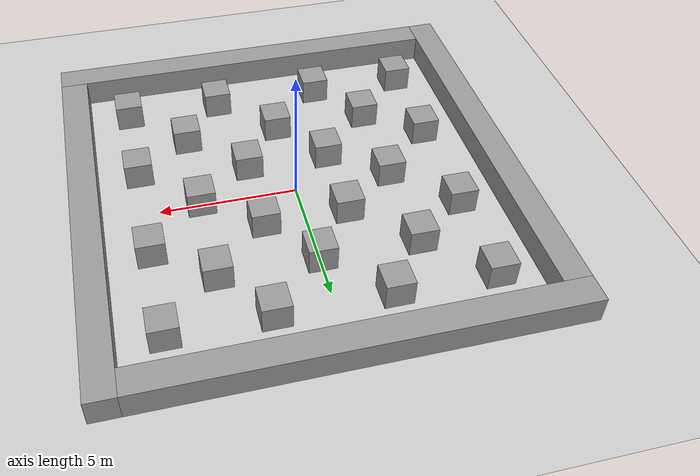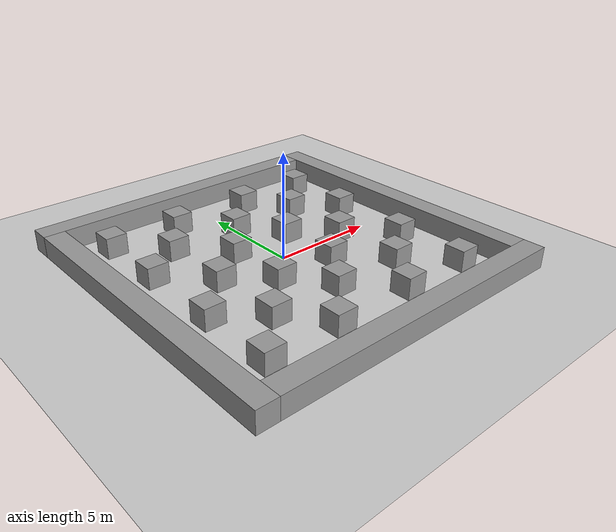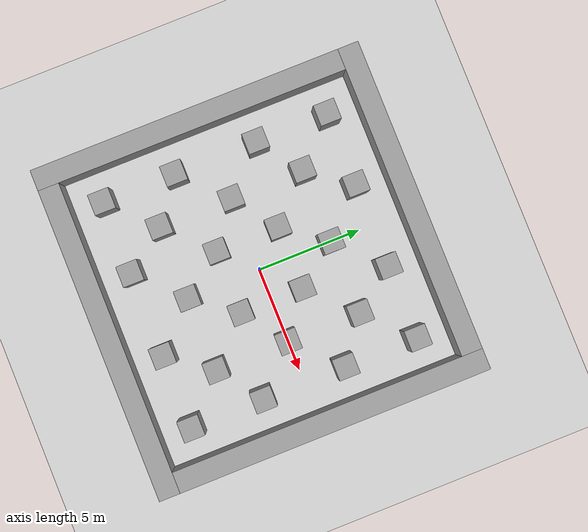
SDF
<sdf version='1.7'>
  <world name='default'>
    <include>
        <uri>model://sun</uri>
    </include>
    <include>
        <uri>model://ground_plane</uri>
    </include>

    <spherical_coordinates>
      <surface_model>EARTH_WGS84</surface_model>
      <latitude_deg>0</latitude_deg>
      <longitude_deg>0</longitude_deg>
      <elevation>0</elevation>
      <heading_deg>0</heading_deg>
    </spherical_coordinates>
    <model name='unit_box_0'>
    <static>true</static>
      <pose>1.5 -1.5 0.5 0 -0 0</pose>
      <link name='link'>
        <inertial>
          <mass>1</mass>
          <inertia>
            <ixx>0.5</ixx>
            <ixy>0</ixy>
            <ixz>0</ixz>
            <iyy>0.5</iyy>
            <iyz>0</iyz>
            <izz>0.5</izz>
          </inertia>
          <pose>0 0 0 0 -0 0</pose>
        </inertial>
        <collision name='collision'>
          <geometry>
            <box>
              <size>1 1 1</size>
            </box>
          </geometry>
          <max_contacts>10</max_contacts>
          <surface>
            <contact>
              <ode/>
            </contact>
            <bounce/>
            <friction>
              <torsional>
                <ode/>
              </torsional>
              <ode/>
            </friction>
          </surface>
        </collision>
        <visual name='visual'>
          <geometry>
            <box>
              <size>1 1 1</size>
            </box>
          </geometry>
          <material>
            <script>
              <name>Gazebo/Grey</name>
              <uri>file://media/materials/scripts/gazebo.material</uri>
            </script>
          </material>
        </visual>
        <self_collide>0</self_collide>
        <enable_wind>0</enable_wind>
        <kinematic>0</kinematic>
      </link>
    </model>
    <model name='unit_box_1'>
      <static>true</static>
      <pose>1.5 1.5 0.5 0 -0 0</pose>
      <link name='link'>
        <inertial>
          <mass>1</mass>
          <inertia>
            <ixx>0.5</ixx>
            <ixy>0</ixy>
            <ixz>0</ixz>
            <iyy>0.5</iyy>
            <iyz>0</iyz>
            <izz>0.5</izz>
          </inertia>
          <pose>0 0 0 0 -0 0</pose>
        </inertial>
        <collision name='collision'>
          <geometry>
            <box>
              <size>1 1 1</size>
            </box>
          </geometry>
          <max_contacts>10</max_contacts>
          <surface>
            <contact>
              <ode/>
            </contact>
            <bounce/>
            <friction>
              <torsional>
                <ode/>
              </torsional>
              <ode/>
            </friction>
          </surface>
        </collision>
        <visual name='visual'>
          <geometry>
            <box>
              <size>1 1 1</size>
            </box>
          </geometry>
          <material>
            <script>
              <name>Gazebo/Grey</name>
              <uri>file://media/materials/scripts/gazebo.material</uri>
            </script>
          </material>
        </visual>
        <self_collide>0</self_collide>
        <enable_wind>0</enable_wind>
        <kinematic>0</kinematic>
      </link>
    </model>
    <model name='unit_box_2'>
      <static>true</static>
      <pose>-1.5 1.5 0.5 0 -0 0</pose>
      <link name='link'>
        <inertial>
          <mass>1</mass>
          <inertia>
            <ixx>0.5</ixx>
            <ixy>0</ixy>
            <ixz>0</ixz>
            <iyy>0.5</iyy>
            <iyz>0</iyz>
            <izz>0.5</izz>
          </inertia>
          <pose>0 0 0 0 -0 0</pose>
        </inertial>
        <collision name='collision'>
          <geometry>
            <box>
              <size>1 1 1</size>
            </box>
          </geometry>
          <max_contacts>10</max_contacts>
          <surface>
            <contact>
              <ode/>
            </contact>
            <bounce/>
            <friction>
              <torsional>
                <ode/>
              </torsional>
              <ode/>
            </friction>
          </surface>
        </collision>
        <visual name='visual'>
          <geometry>
            <box>
              <size>1 1 1</size>
            </box>
          </geometry>
          <material>
            <script>
              <name>Gazebo/Grey</name>
              <uri>file://media/materials/scripts/gazebo.material</uri>
            </script>
          </material>
        </visual>
        <self_collide>0</self_collide>
        <enable_wind>0</enable_wind>
        <kinematic>0</kinematic>
      </link>
    </model>
    <model name='unit_box_3'>
      <static>true</static>
      <pose>-1.5 -1.5 0.5 0 -0 0</pose>
      <link name='link'>
        <inertial>
          <mass>1</mass>
          <inertia>
            <ixx>0.5</ixx>
            <ixy>0</ixy>
            <ixz>0</ixz>
            <iyy>0.5</iyy>
            <iyz>0</iyz>
            <izz>0.5</izz>
          </inertia>
          <pose>0 0 0 0 -0 0</pose>
        </inertial>
        <collision name='collision'>
          <geometry>
            <box>
              <size>1 1 1</size>
            </box>
          </geometry>
          <max_contacts>10</max_contacts>
          <surface>
            <contact>
              <ode/>
            </contact>
            <bounce/>
            <friction>
              <torsional>
                <ode/>
              </torsional>
              <ode/>
            </friction>
          </surface>
        </collision>
        <visual name='visual'>
          <geometry>
            <box>
              <size>1 1 1</size>
            </box>
          </geometry>
          <material>
            <script>
              <name>Gazebo/Grey</name>
              <uri>file://media/materials/scripts/gazebo.material</uri>
            </script>
          </material>
        </visual>
        <self_collide>0</self_collide>
        <enable_wind>0</enable_wind>
        <kinematic>0</kinematic>
      </link>
    </model>
    <model name='unit_box_5'>
      <static>true</static>
      <pose>-3.5 3.5 0.5 -0 -0 -0</pose>
      <link name='link'>
        <inertial>
          <mass>1</mass>
          <inertia>
            <ixx>0.5</ixx>
            <ixy>0</ixy>
            <ixz>0</ixz>
            <iyy>0.5</iyy>
            <iyz>0</iyz>
            <izz>0.5</izz>
          </inertia>
          <pose>0 0 0 0 -0 0</pose>
        </inertial>
        <collision name='collision'>
          <geometry>
            <box>
              <size>1 1 1</size>
            </box>
          </geometry>
          <max_contacts>10</max_contacts>
          <surface>
            <contact>
              <ode/>
            </contact>
            <bounce/>
            <friction>
              <torsional>
                <ode/>
              </torsional>
              <ode/>
            </friction>
          </surface>
        </collision>
        <visual name='visual'>
          <geometry>
            <box>
              <size>1 1 1</size>
            </box>
          </geometry>
          <material>
            <script>
              <name>Gazebo/Grey</name>
              <uri>file://media/materials/scripts/gazebo.material</uri>
            </script>
          </material>
        </visual>
        <self_collide>0</self_collide>
        <enable_wind>0</enable_wind>
        <kinematic>0</kinematic>
      </link>
    </model>
    <model name='unit_box_6'>
      <static>true</static>
      <pose>3.5 3.5 0.5 0 -0 0</pose>
      <link name='link'>
        <inertial>
          <mass>1</mass>
          <inertia>
            <ixx>0.5</ixx>
            <ixy>0</ixy>
            <ixz>0</ixz>
            <iyy>0.5</iyy>
            <iyz>0</iyz>
            <izz>0.5</izz>
          </inertia>
          <pose>0 0 0 0 -0 0</pose>
        </inertial>
        <collision name='collision'>
          <geometry>
            <box>
              <size>1 1 1</size>
            </box>
          </geometry>
          <max_contacts>10</max_contacts>
          <surface>
            <contact>
              <ode/>
            </contact>
            <bounce/>
            <friction>
              <torsional>
                <ode/>
              </torsional>
              <ode/>
            </friction>
          </surface>
        </collision>
        <visual name='visual'>
          <geometry>
            <box>
              <size>1 1 1</size>
            </box>
          </geometry>
          <material>
            <script>
              <name>Gazebo/Grey</name>
              <uri>file://media/materials/scripts/gazebo.material</uri>
            </script>
          </material>
        </visual>
        <self_collide>0</self_collide>
        <enable_wind>0</enable_wind>
        <kinematic>0</kinematic>
      </link>
    </model>
    <model name='unit_box_7'>
      <static>true</static>
      <pose>3.5 -3.5 0.5 0 -0 0</pose>
      <link name='link'>
        <inertial>
          <mass>1</mass>
          <inertia>
            <ixx>0.5</ixx>
            <ixy>0</ixy>
            <ixz>0</ixz>
            <iyy>0.5</iyy>
            <iyz>0</iyz>
            <izz>0.5</izz>
          </inertia>
          <pose>0 0 0 0 -0 0</pose>
        </inertial>
        <collision name='collision'>
          <geometry>
            <box>
              <size>1 1 1</size>
            </box>
          </geometry>
          <max_contacts>10</max_contacts>
          <surface>
            <contact>
              <ode/>
            </contact>
            <bounce/>
            <friction>
              <torsional>
                <ode/>
              </torsional>
              <ode/>
            </friction>
          </surface>
        </collision>
        <visual name='visual'>
          <geometry>
            <box>
              <size>1 1 1</size>
            </box>
          </geometry>
          <material>
            <script>
              <name>Gazebo/Grey</name>
              <uri>file://media/materials/scripts/gazebo.material</uri>
            </script>
          </material>
        </visual>
        <self_collide>0</self_collide>
        <enable_wind>0</enable_wind>
        <kinematic>0</kinematic>
      </link>
    </model>
    <model name='unit_box_8'>
      <static>true</static>
      <pose>0 -3.5 0.5 0 -0 0</pose>
      <link name='link'>
        <inertial>
          <mass>1</mass>
          <inertia>
            <ixx>0.5</ixx>
            <ixy>0</ixy>
            <ixz>0</ixz>
            <iyy>0.5</iyy>
            <iyz>0</iyz>
            <izz>0.5</izz>
          </inertia>
          <pose>0 0 0 0 -0 0</pose>
        </inertial>
        <collision name='collision'>
          <geometry>
            <box>
              <size>1 1 1</size>
            </box>
          </geometry>
          <max_contacts>10</max_contacts>
          <surface>
            <contact>
              <ode/>
            </contact>
            <bounce/>
            <friction>
              <torsional>
                <ode/>
              </torsional>
              <ode/>
            </friction>
          </surface>
        </collision>
        <visual name='visual'>
          <geometry>
            <box>
              <size>1 1 1</size>
            </box>
          </geometry>
          <material>
            <script>
              <name>Gazebo/Grey</name>
              <uri>file://media/materials/scripts/gazebo.material</uri>
            </script>
          </material>
        </visual>
        <self_collide>0</self_collide>
        <enable_wind>0</enable_wind>
        <kinematic>0</kinematic>
      </link>
    </model>
    <model name='unit_box_9'>
      <static>true</static>
      <pose>3.5 0 0.5 0 -0 0</pose>
      <link name='link'>
        <inertial>
          <mass>1</mass>
          <inertia>
            <ixx>0.5</ixx>
            <ixy>0</ixy>
            <ixz>0</ixz>
            <iyy>0.5</iyy>
            <iyz>0</iyz>
            <izz>0.5</izz>
          </inertia>
          <pose>0 0 0 0 -0 0</pose>
        </inertial>
        <collision name='collision'>
          <geometry>
            <box>
              <size>1 1 1</size>
            </box>
          </geometry>
          <max_contacts>10</max_contacts>
          <surface>
            <contact>
              <ode/>
            </contact>
            <bounce/>
            <friction>
              <torsional>
                <ode/>
              </torsional>
              <ode/>
            </friction>
          </surface>
        </collision>
        <visual name='visual'>
          <geometry>
            <box>
              <size>1 1 1</size>
            </box>
          </geometry>
          <material>
            <script>
              <name>Gazebo/Grey</name>
              <uri>file://media/materials/scripts/gazebo.material</uri>
            </script>
          </material>
        </visual>
        <self_collide>0</self_collide>
        <enable_wind>0</enable_wind>
        <kinematic>0</kinematic>
      </link>
    </model>
    <model name='unit_box_10'>
      <static>true</static>
      <pose>-3.5 -3.5 0.5 0 -0 0</pose>
      <link name='link'>
        <inertial>
          <mass>1</mass>
          <inertia>
            <ixx>0.5</ixx>
            <ixy>0</ixy>
            <ixz>0</ixz>
            <iyy>0.5</iyy>
            <iyz>0</iyz>
            <izz>0.5</izz>
          </inertia>
          <pose>0 0 0 0 -0 0</pose>
        </inertial>
        <collision name='collision'>
          <geometry>
            <box>
              <size>1 1 1</size>
            </box>
          </geometry>
          <max_contacts>10</max_contacts>
          <surface>
            <contact>
              <ode/>
            </contact>
            <bounce/>
            <friction>
              <torsional>
                <ode/>
              </torsional>
              <ode/>
            </friction>
          </surface>
        </collision>
        <visual name='visual'>
          <geometry>
            <box>
              <size>1 1 1</size>
            </box>
          </geometry>
          <material>
            <script>
              <name>Gazebo/Grey</name>
              <uri>file://media/materials/scripts/gazebo.material</uri>
            </script>
          </material>
        </visual>
        <self_collide>0</self_collide>
        <enable_wind>0</enable_wind>
        <kinematic>0</kinematic>
      </link>
    </model>
    <model name='unit_box_11'>
      <static>true</static>
      <pose>-3.5 -0 0.5 0 -0 0</pose>
      <link name='link'>
        <inertial>
          <mass>1</mass>
          <inertia>
            <ixx>0.5</ixx>
            <ixy>0</ixy>
            <ixz>0</ixz>
            <iyy>0.5</iyy>
            <iyz>0</iyz>
            <izz>0.5</izz>
          </inertia>
          <pose>0 0 0 0 -0 0</pose>
        </inertial>
        <collision name='collision'>
          <geometry>
            <box>
              <size>1 1 1</size>
            </box>
          </geometry>
          <max_contacts>10</max_contacts>
          <surface>
            <contact>
              <ode/>
            </contact>
            <bounce/>
            <friction>
              <torsional>
                <ode/>
              </torsional>
              <ode/>
            </friction>
          </surface>
        </collision>
        <visual name='visual'>
          <geometry>
            <box>
              <size>1 1 1</size>
            </box>
          </geometry>
          <material>
            <script>
              <name>Gazebo/Grey</name>
              <uri>file://media/materials/scripts/gazebo.material</uri>
            </script>
          </material>
        </visual>
        <self_collide>0</self_collide>
        <enable_wind>0</enable_wind>
        <kinematic>0</kinematic>
      </link>
    </model>
    <model name='unit_box_12'>
      <static>true</static>
      <pose>0 3.5 0.5 0 -0 0</pose>
      <link name='link'>
        <inertial>
          <mass>1</mass>
          <inertia>
            <ixx>0.5</ixx>
            <ixy>0</ixy>
            <ixz>0</ixz>
            <iyy>0.5</iyy>
            <iyz>0</iyz>
            <izz>0.5</izz>
          </inertia>
          <pose>0 0 0 0 -0 0</pose>
        </inertial>
        <collision name='collision'>
          <geometry>
            <box>
              <size>1 1 1</size>
            </box>
          </geometry>
          <max_contacts>10</max_contacts>
          <surface>
            <contact>
              <ode/>
            </contact>
            <bounce/>
            <friction>
              <torsional>
                <ode/>
              </torsional>
              <ode/>
            </friction>
          </surface>
        </collision>
        <visual name='visual'>
          <geometry>
            <box>
              <size>1 1 1</size>
            </box>
          </geometry>
          <material>
            <script>
              <name>Gazebo/Grey</name>
              <uri>file://media/materials/scripts/gazebo.material</uri>
            </script>
          </material>
        </visual>
        <self_collide>0</self_collide>
        <enable_wind>0</enable_wind>
        <kinematic>0</kinematic>
      </link>
    </model>
    <model name='unit_box_13'>
      <static>true</static>
      <pose>-5.5 5.5 0.5 0 -0 0</pose>
      <link name='link'>
        <inertial>
          <mass>1</mass>
          <inertia>
            <ixx>0.5</ixx>
            <ixy>0</ixy>
            <ixz>0</ixz>
            <iyy>0.5</iyy>
            <iyz>0</iyz>
            <izz>0.5</izz>
          </inertia>
          <pose>0 0 0 0 -0 0</pose>
        </inertial>
        <collision name='collision'>
          <geometry>
            <box>
              <size>1 1 1</size>
            </box>
          </geometry>
          <max_contacts>10</max_contacts>
          <surface>
            <contact>
              <ode/>
            </contact>
            <bounce/>
            <friction>
              <torsional>
                <ode/>
              </torsional>
              <ode/>
            </friction>
          </surface>
        </collision>
        <visual name='visual'>
          <geometry>
            <box>
              <size>1 1 1</size>
            </box>
          </geometry>
          <material>
            <script>
              <name>Gazebo/Grey</name>
              <uri>file://media/materials/scripts/gazebo.material</uri>
            </script>
          </material>
        </visual>
        <self_collide>0</self_collide>
        <enable_wind>0</enable_wind>
        <kinematic>0</kinematic>
      </link>
    </model>
    <model name='unit_box_14'>
      <static>true</static>
      <pose>-2 5.5 0.5 0 -0 0</pose>
      <link name='link'>
        <inertial>
          <mass>1</mass>
          <inertia>
            <ixx>0.5</ixx>
            <ixy>0</ixy>
            <ixz>0</ixz>
            <iyy>0.5</iyy>
            <iyz>0</iyz>
            <izz>0.5</izz>
          </inertia>
          <pose>0 0 0 0 -0 0</pose>
        </inertial>
        <collision name='collision'>
          <geometry>
            <box>
              <size>1 1 1</size>
            </box>
          </geometry>
          <max_contacts>10</max_contacts>
          <surface>
            <contact>
              <ode/>
            </contact>
            <bounce/>
            <friction>
              <torsional>
                <ode/>
              </torsional>
              <ode/>
            </friction>
          </surface>
        </collision>
        <visual name='visual'>
          <geometry>
            <box>
              <size>1 1 1</size>
            </box>
          </geometry>
          <material>
            <script>
              <name>Gazebo/Grey</name>
              <uri>file://media/materials/scripts/gazebo.material</uri>
            </script>
          </material>
        </visual>
        <self_collide>0</self_collide>
        <enable_wind>0</enable_wind>
        <kinematic>0</kinematic>
      </link>
    </model>
    <model name='unit_box_15'>
      <static>true</static>
      <pose>2 5.5 0.5 0 -0 0</pose>
      <link name='link'>
        <inertial>
          <mass>1</mass>
          <inertia>
            <ixx>0.5</ixx>
            <ixy>0</ixy>
            <ixz>0</ixz>
            <iyy>0.5</iyy>
            <iyz>0</iyz>
            <izz>0.5</izz>
          </inertia>
          <pose>0 0 0 0 -0 0</pose>
        </inertial>
        <collision name='collision'>
          <geometry>
            <box>
              <size>1 1 1</size>
            </box>
          </geometry>
          <max_contacts>10</max_contacts>
          <surface>
            <contact>
              <ode/>
            </contact>
            <bounce/>
            <friction>
              <torsional>
                <ode/>
              </torsional>
              <ode/>
            </friction>
          </surface>
        </collision>
        <visual name='visual'>
          <geometry>
            <box>
              <size>1 1 1</size>
            </box>
          </geometry>
          <material>
            <script>
              <name>Gazebo/Grey</name>
              <uri>file://media/materials/scripts/gazebo.material</uri>
            </script>
          </material>
        </visual>
        <self_collide>0</self_collide>
        <enable_wind>0</enable_wind>
        <kinematic>0</kinematic>
      </link>
    </model>
    <model name='unit_box_16'>
      <static>true</static>
      <pose>5.5 5.5 0.5 0 -0 0</pose>
      <link name='link'>
        <inertial>
          <mass>1</mass>
          <inertia>
            <ixx>0.5</ixx>
            <ixy>0</ixy>
            <ixz>0</ixz>
            <iyy>0.5</iyy>
            <iyz>0</iyz>
            <izz>0.5</izz>
          </inertia>
          <pose>0 0 0 0 -0 0</pose>
        </inertial>
        <collision name='collision'>
          <geometry>
            <box>
              <size>1 1 1</size>
            </box>
          </geometry>
          <max_contacts>10</max_contacts>
          <surface>
            <contact>
              <ode/>
            </contact>
            <bounce/>
            <friction>
              <torsional>
                <ode/>
              </torsional>
              <ode/>
            </friction>
          </surface>
        </collision>
        <visual name='visual'>
          <geometry>
            <box>
              <size>1 1 1</size>
            </box>
          </geometry>
          <material>
            <script>
              <name>Gazebo/Grey</name>
              <uri>file://media/materials/scripts/gazebo.material</uri>
            </script>
          </material>
        </visual>
        <self_collide>0</self_collide>
        <enable_wind>0</enable_wind>
        <kinematic>0</kinematic>
      </link>
    </model>
    <model name='unit_box_17'>
      <static>true</static>
      <pose>5.5 2 0.5 0 -0 0</pose>
      <link name='link'>
        <inertial>
          <mass>1</mass>
          <inertia>
            <ixx>0.5</ixx>
            <ixy>0</ixy>
            <ixz>0</ixz>
            <iyy>0.5</iyy>
            <iyz>0</iyz>
            <izz>0.5</izz>
          </inertia>
          <pose>0 0 0 0 -0 0</pose>
        </inertial>
        <collision name='collision'>
          <geometry>
            <box>
              <size>1 1 1</size>
            </box>
          </geometry>
          <max_contacts>10</max_contacts>
          <surface>
            <contact>
              <ode/>
            </contact>
            <bounce/>
            <friction>
              <torsional>
                <ode/>
              </torsional>
              <ode/>
            </friction>
          </surface>
        </collision>
        <visual name='visual'>
          <geometry>
            <box>
              <size>1 1 1</size>
            </box>
          </geometry>
          <material>
            <script>
              <name>Gazebo/Grey</name>
              <uri>file://media/materials/scripts/gazebo.material</uri>
            </script>
          </material>
        </visual>
        <self_collide>0</self_collide>
        <enable_wind>0</enable_wind>
        <kinematic>0</kinematic>
      </link>
    </model>
    <model name='unit_box_18'>
      <static>true</static>
      <pose>5.5 -2 0.5 0 -0 0</pose>
      <link name='link'>
        <inertial>
          <mass>1</mass>
          <inertia>
            <ixx>0.5</ixx>
            <ixy>0</ixy>
            <ixz>0</ixz>
            <iyy>0.5</iyy>
            <iyz>0</iyz>
            <izz>0.5</izz>
          </inertia>
          <pose>0 0 0 0 -0 0</pose>
        </inertial>
        <collision name='collision'>
          <geometry>
            <box>
              <size>1 1 1</size>
            </box>
          </geometry>
          <max_contacts>10</max_contacts>
          <surface>
            <contact>
              <ode/>
            </contact>
            <bounce/>
            <friction>
              <torsional>
                <ode/>
              </torsional>
              <ode/>
            </friction>
          </surface>
        </collision>
        <visual name='visual'>
          <geometry>
            <box>
              <size>1 1 1</size>
            </box>
          </geometry>
          <material>
            <script>
              <name>Gazebo/Grey</name>
              <uri>file://media/materials/scripts/gazebo.material</uri>
            </script>
          </material>
        </visual>
        <self_collide>0</self_collide>
        <enable_wind>0</enable_wind>
        <kinematic>0</kinematic>
      </link>
    </model>
    <model name='unit_box_19'>
      <static>true</static>
      <pose>5.5 -5.5 0.5 0 -0 0</pose>
      <link name='link'>
        <inertial>
          <mass>1</mass>
          <inertia>
            <ixx>0.5</ixx>
            <ixy>0</ixy>
            <ixz>0</ixz>
            <iyy>0.5</iyy>
            <iyz>0</iyz>
            <izz>0.5</izz>
          </inertia>
          <pose>0 0 0 0 -0 0</pose>
        </inertial>
        <collision name='collision'>
          <geometry>
            <box>
              <size>1 1 1</size>
            </box>
          </geometry>
          <max_contacts>10</max_contacts>
          <surface>
            <contact>
              <ode/>
            </contact>
            <bounce/>
            <friction>
              <torsional>
                <ode/>
              </torsional>
              <ode/>
            </friction>
          </surface>
        </collision>
        <visual name='visual'>
          <geometry>
            <box>
              <size>1 1 1</size>
            </box>
          </geometry>
          <material>
            <script>
              <name>Gazebo/Grey</name>
              <uri>file://media/materials/scripts/gazebo.material</uri>
            </script>
          </material>
        </visual>
        <self_collide>0</self_collide>
        <enable_wind>0</enable_wind>
        <kinematic>0</kinematic>
      </link>
    </model>
    <model name='unit_box_20'>
      <static>true</static>
      <pose>2 -5.5 0.5 0 -0 0</pose>
      <link name='link'>
        <inertial>
          <mass>1</mass>
          <inertia>
            <ixx>0.5</ixx>
            <ixy>0</ixy>
            <ixz>0</ixz>
            <iyy>0.5</iyy>
            <iyz>0</iyz>
            <izz>0.5</izz>
          </inertia>
          <pose>0 0 0 0 -0 0</pose>
        </inertial>
        <collision name='collision'>
          <geometry>
            <box>
              <size>1 1 1</size>
            </box>
          </geometry>
          <max_contacts>10</max_contacts>
          <surface>
            <contact>
              <ode/>
            </contact>
            <bounce/>
            <friction>
              <torsional>
                <ode/>
              </torsional>
              <ode/>
            </friction>
          </surface>
        </collision>
        <visual name='visual'>
          <geometry>
            <box>
              <size>1 1 1</size>
            </box>
          </geometry>
          <material>
            <script>
              <name>Gazebo/Grey</name>
              <uri>file://media/materials/scripts/gazebo.material</uri>
            </script>
          </material>
        </visual>
        <self_collide>0</self_collide>
        <enable_wind>0</enable_wind>
        <kinematic>0</kinematic>
      </link>
    </model>
    <model name='unit_box_21'>
      <static>true</static>
      <pose>-5.5 -5.5 0.5 0 -0 0</pose>
      <link name='link'>
        <inertial>
          <mass>1</mass>
          <inertia>
            <ixx>0.5</ixx>
            <ixy>0</ixy>
            <ixz>0</ixz>
            <iyy>0.5</iyy>
            <iyz>0</iyz>
            <izz>0.5</izz>
          </inertia>
          <pose>0 0 0 0 -0 0</pose>
        </inertial>
        <collision name='collision'>
          <geometry>
            <box>
              <size>1 1 1</size>
            </box>
          </geometry>
          <max_contacts>10</max_contacts>
          <surface>
            <contact>
              <ode/>
            </contact>
            <bounce/>
            <friction>
              <torsional>
                <ode/>
              </torsional>
              <ode/>
            </friction>
          </surface>
        </collision>
        <visual name='visual'>
          <geometry>
            <box>
              <size>1 1 1</size>
            </box>
          </geometry>
          <material>
            <script>
              <name>Gazebo/Grey</name>
              <uri>file://media/materials/scripts/gazebo.material</uri>
            </script>
          </material>
        </visual>
        <self_collide>0</self_collide>
        <enable_wind>0</enable_wind>
        <kinematic>0</kinematic>
      </link>
    </model>
    <model name='unit_box_22'>
      <static>true</static>
      <pose>-2 -5.5 0.5 0 -0 0</pose>
      <link name='link'>
        <inertial>
          <mass>1</mass>
          <inertia>
            <ixx>0.5</ixx>
            <ixy>0</ixy>
            <ixz>0</ixz>
            <iyy>0.5</iyy>
            <iyz>0</iyz>
            <izz>0.5</izz>
          </inertia>
          <pose>0 0 0 0 -0 0</pose>
        </inertial>
        <collision name='collision'>
          <geometry>
            <box>
              <size>1 1 1</size>
            </box>
          </geometry>
          <max_contacts>10</max_contacts>
          <surface>
            <contact>
              <ode/>
            </contact>
            <bounce/>
            <friction>
              <torsional>
                <ode/>
              </torsional>
              <ode/>
            </friction>
          </surface>
        </collision>
        <visual name='visual'>
          <geometry>
            <box>
              <size>1 1 1</size>
            </box>
          </geometry>
          <material>
            <script>
              <name>Gazebo/Grey</name>
              <uri>file://media/materials/scripts/gazebo.material</uri>
            </script>
          </material>
        </visual>
        <self_collide>0</self_collide>
        <enable_wind>0</enable_wind>
        <kinematic>0</kinematic>
      </link>
    </model>
    <model name='unit_box_23'>
      <static>true</static>
      <pose>-5.5 2 0.5 0 -0 0</pose>
      <link name='link'>
        <inertial>
          <mass>1</mass>
          <inertia>
            <ixx>0.5</ixx>
            <ixy>0</ixy>
            <ixz>0</ixz>
            <iyy>0.5</iyy>
            <iyz>0</iyz>
            <izz>0.5</izz>
          </inertia>
          <pose>0 0 0 0 -0 0</pose>
        </inertial>
        <collision name='collision'>
          <geometry>
            <box>
              <size>1 1 1</size>
            </box>
          </geometry>
          <max_contacts>10</max_contacts>
          <surface>
            <contact>
              <ode/>
            </contact>
            <bounce/>
            <friction>
              <torsional>
                <ode/>
              </torsional>
              <ode/>
            </friction>
          </surface>
        </collision>
        <visual name='visual'>
          <geometry>
            <box>
              <size>1 1 1</size>
            </box>
          </geometry>
          <material>
            <script>
              <name>Gazebo/Grey</name>
              <uri>file://media/materials/scripts/gazebo.material</uri>
            </script>
          </material>
        </visual>
        <self_collide>0</self_collide>
        <enable_wind>0</enable_wind>
        <kinematic>0</kinematic>
      </link>
    </model>
    <model name='unit_box_24'>
      <static>true</static>
      <pose>-5.5 -2 0.5 0 -0 0</pose>
      <link name='link'>
        <inertial>
          <mass>1</mass>
          <inertia>
            <ixx>0.5</ixx>
            <ixy>0</ixy>
            <ixz>0</ixz>
            <iyy>0.5</iyy>
            <iyz>0</iyz>
            <izz>0.5</izz>
          </inertia>
          <pose>0 0 0 0 -0 0</pose>
        </inertial>
        <collision name='collision'>
          <geometry>
            <box>
              <size>1 1 1</size>
            </box>
          </geometry>
          <max_contacts>10</max_contacts>
          <surface>
            <contact>
              <ode/>
            </contact>
            <bounce/>
            <friction>
              <torsional>
                <ode/>
              </torsional>
              <ode/>
            </friction>
          </surface>
        </collision>
        <visual name='visual'>
          <geometry>
            <box>
              <size>1 1 1</size>
            </box>
          </geometry>
          <material>
            <script>
              <name>Gazebo/Grey</name>
              <uri>file://media/materials/scripts/gazebo.material</uri>
            </script>
          </material>
        </visual>
        <self_collide>0</self_collide>
        <enable_wind>0</enable_wind>
        <kinematic>0</kinematic>
      </link>
    </model>
    <model name='unit_box_25'>
      <static>true</static>
      <pose>0.5 -7.5 0.5 0 -0 0</pose>
      <link name='link'>
        <inertial>
          <mass>1</mass>
          <inertia>
            <ixx>0.5</ixx>
            <ixy>0</ixy>
            <ixz>0</ixz>
            <iyy>0.5</iyy>
            <iyz>0</iyz>
            <izz>0.5</izz>
          </inertia>
          <pose>0 0 0 0 -0 0</pose>
        </inertial>
        <collision name='collision'>
          <geometry>
            <box>
              <size>15 1 1</size>
            </box>
          </geometry>
          <max_contacts>10</max_contacts>
          <surface>
            <contact>
              <ode/>
            </contact>
            <bounce/>
            <friction>
              <torsional>
                <ode/>
              </torsional>
              <ode/>
            </friction>
          </surface>
        </collision>
        <visual name='visual'>
          <geometry>
            <box>
              <size>15 1 1</size>
            </box>
          </geometry>
          <material>
            <script>
              <name>Gazebo/Grey</name>
              <uri>file://media/materials/scripts/gazebo.material</uri>
            </script>
          </material>
        </visual>
        <self_collide>0</self_collide>
        <enable_wind>0</enable_wind>
        <kinematic>0</kinematic>
      </link>
    </model>
    <model name='unit_box_26'>
      <static>true</static>
      <pose>-0.5 7.5 0.5 0 -0 0</pose>
      <link name='link'>
        <inertial>
          <mass>1</mass>
          <inertia>
            <ixx>0.5</ixx>
            <ixy>0</ixy>
            <ixz>0</ixz>
            <iyy>0.5</iyy>
            <iyz>0</iyz>
            <izz>0.5</izz>
          </inertia>
          <pose>0 0 0 0 -0 0</pose>
        </inertial>
        <collision name='collision'>
          <geometry>
            <box>
              <size>15 1 1</size>
            </box>
          </geometry>
          <max_contacts>10</max_contacts>
          <surface>
            <contact>
              <ode/>
            </contact>
            <bounce/>
            <friction>
              <torsional>
                <ode/>
              </torsional>
              <ode/>
            </friction>
          </surface>
        </collision>
        <visual name='visual'>
          <geometry>
            <box>
              <size>15 1 1</size>
            </box>
          </geometry>
          <material>
            <script>
              <name>Gazebo/Grey</name>
              <uri>file://media/materials/scripts/gazebo.material</uri>
            </script>
          </material>
        </visual>
        <self_collide>0</self_collide>
        <enable_wind>0</enable_wind>
        <kinematic>0</kinematic>
      </link>
    </model>
    <model name='unit_box_27'>
      <static>true</static>
      <pose>-7.5 -0.5 0.5 0 -0 0</pose>
      <link name='link'>
        <inertial>
          <mass>1</mass>
          <inertia>
            <ixx>0.5</ixx>
            <ixy>0</ixy>
            <ixz>0</ixz>
            <iyy>0.5</iyy>
            <iyz>0</iyz>
            <izz>0.5</izz>
          </inertia>
          <pose>0 0 0 0 -0 0</pose>
        </inertial>
        <collision name='collision'>
          <geometry>
            <box>
              <size>1 15 1</size>
            </box>
          </geometry>
          <max_contacts>10</max_contacts>
          <surface>
            <contact>
              <ode/>
            </contact>
            <bounce/>
            <friction>
              <torsional>
                <ode/>
              </torsional>
              <ode/>
            </friction>
          </surface>
        </collision>
        <visual name='visual'>
          <geometry>
            <box>
              <size>1 15 1</size>
            </box>
          </geometry>
          <material>
            <script>
              <name>Gazebo/Grey</name>
              <uri>file://media/materials/scripts/gazebo.material</uri>
            </script>
          </material>
        </visual>
        <self_collide>0</self_collide>
        <enable_wind>0</enable_wind>
        <kinematic>0</kinematic>
      </link>
    </model>
    <model name='unit_box_28'>
      <static>true</static>
      <pose>7.5 0.5 0.5 0 -0 0</pose>
      <link name='link'>
        <inertial>
          <mass>1</mass>
          <inertia>
            <ixx>0.5</ixx>
            <ixy>0</ixy>
            <ixz>0</ixz>
            <iyy>0.5</iyy>
            <iyz>0</iyz>
            <izz>0.5</izz>
          </inertia>
          <pose>0 0 0 0 -0 0</pose>
        </inertial>
        <collision name='collision'>
          <geometry>
            <box>
              <size>1 15 1</size>
            </box>
          </geometry>
          <max_contacts>10</max_contacts>
          <surface>
            <contact>
              <ode/>
            </contact>
            <bounce/>
            <friction>
              <torsional>
                <ode/>
              </torsional>
              <ode/>
            </friction>
          </surface>
        </collision>
        <visual name='visual'>
          <geometry>
            <box>
              <size>1 15 1</size>
            </box>
          </geometry>
          <material>
            <script>
              <name>Gazebo/Grey</name>
              <uri>file://media/materials/scripts/gazebo.material</uri>
            </script>
          </material>
        </visual>
        <self_collide>0</self_collide>
        <enable_wind>0</enable_wind>
        <kinematic>0</kinematic>
      </link>
    </model>
    <gravity>0 0 -9.8</gravity>
    <magnetic_field>6e-06 2.3e-05 -4.2e-05</magnetic_field>
    <atmosphere type='adiabatic'/>
    <physics type='ode'>
      <max_step_size>0.001</max_step_size>
      <real_time_factor>1</real_time_factor>
      <real_time_update_rate>1000</real_time_update_rate>
    </physics>
    <scene>
      <ambient>0.4 0.4 0.4 1</ambient>
      <background>0.7 0.7 0.7 1</background>
      <shadows>1</shadows>
    </scene>
    <audio>
      <device>default</device>
    </audio>
    <wind/>
    <gui fullscreen='0'>
      <camera name='user_camera'>
        <pose>-0.065011 -15.6996 15.5717 0 0.895643 1.67219</pose>
        <view_controller>orbit</view_controller>
        <projection_type>perspective</projection_type>
      </camera>
    </gui>
  </world>
</sdf>
